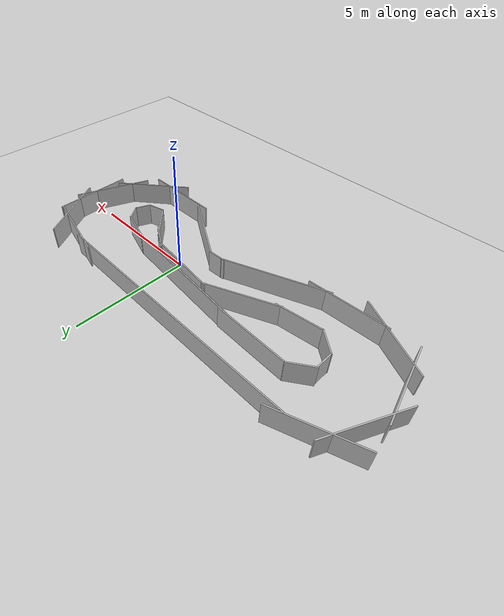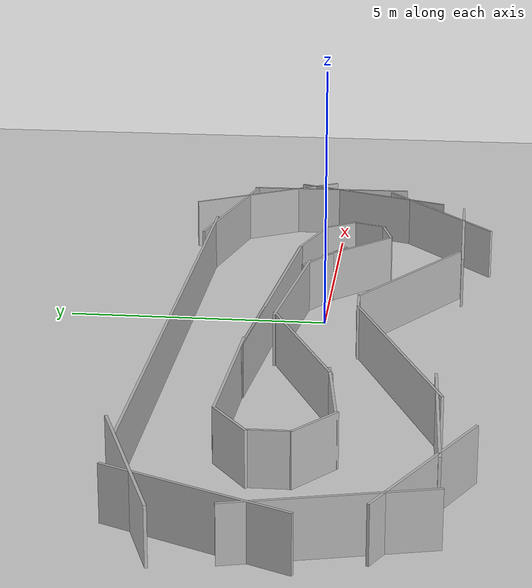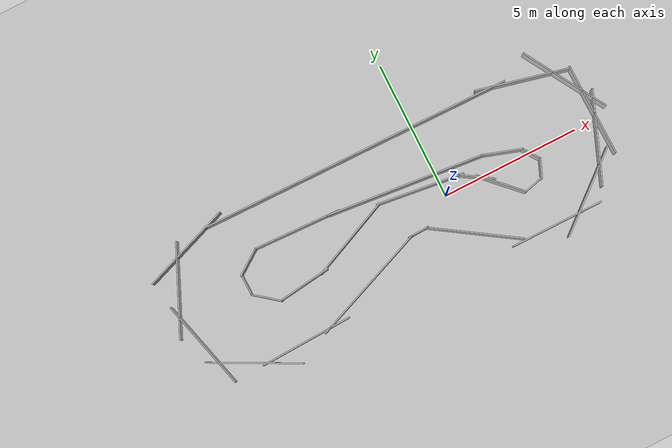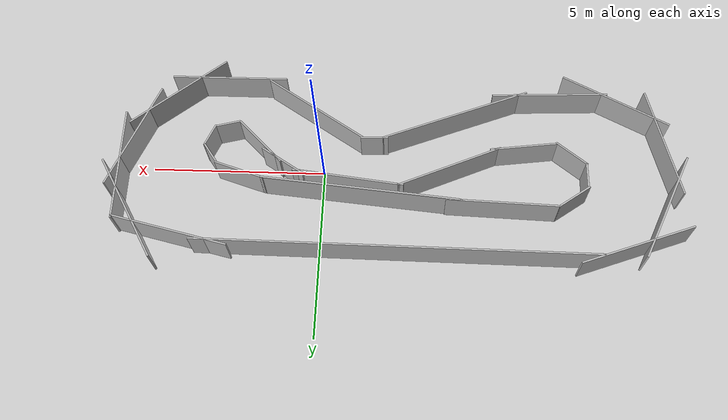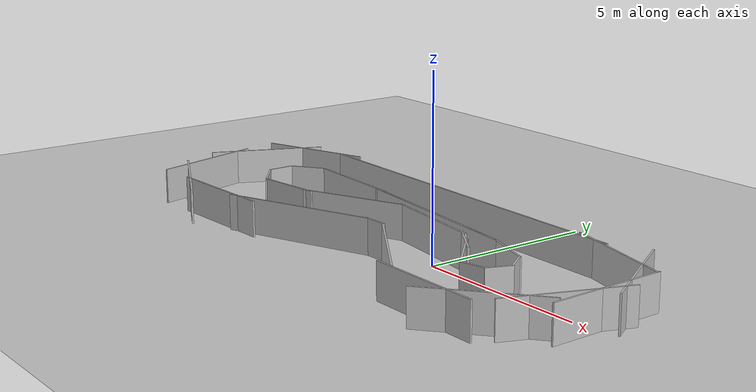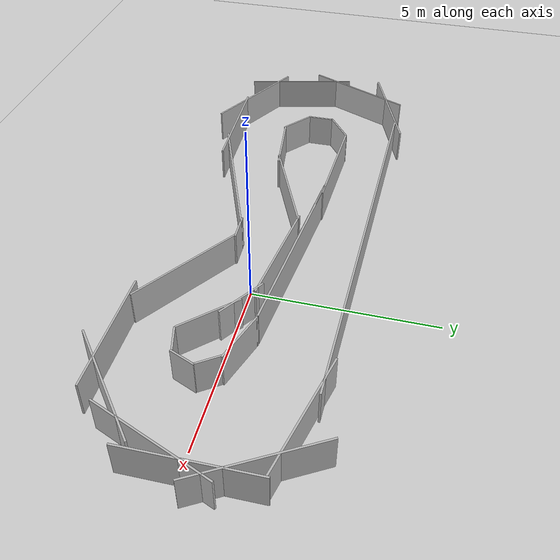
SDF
<sdf version="1.7">
 <world name="default">
  <model name="ground_plane">
   <static>1</static>
   <link name="link">
    <collision name="collision">
     <geometry><plane><normal>0 0 1</normal><size>100 100</size></plane></geometry>
     <surface>
      <contact><collide_bitmask>65535</collide_bitmask></contact>
      <friction><ode><mu>100</mu><mu2>50</mu2></ode></friction>
     </surface>
    </collision>
    <visual name="visual">
     <cast_shadows>0</cast_shadows>
     <geometry><plane><normal>0 0 1</normal><size>100 100</size></plane></geometry>
     <material>
      <script><uri>file://media/materials/scripts/gazebo.material</uri><name>Gazebo/Grey</name></script>
     </material>
    </visual>
   </link>
  </model>
  <light name="sun" type="directional">
   <pose>0 0 10 0 -0 0</pose>
   <diffuse>0.8 0.8 0.8 1</diffuse>
   <specular>0.2 0.2 0.2 1</specular>
   <attenuation>
    <range>1000</range>
    <constant>0.9</constant>
    <linear>0.01</linear>
    <quadratic>0.001</quadratic>
   </attenuation>
   <direction>-0.5 0.1 -0.9</direction>
   <spot><inner_angle>0</inner_angle><outer_angle>0</outer_angle><falloff>0</falloff></spot>
  </light>
  <gravity>0 0 -9.8</gravity>
  <magnetic_field>6e-06 2.3e-05 -4.2e-05</magnetic_field>
  <atmosphere type="adiabatic"/>
  <physics type="ode">
   <max_step_size>0.001</max_step_size>
   <real_time_factor>1</real_time_factor>
   <real_time_update_rate>1000</real_time_update_rate>
  </physics>
  <scene><ambient>0.4 0.4 0.4 1</ambient><background>0.7 0.7 0.7 1</background><shadows>1</shadows></scene>
  <spherical_coordinates>
   <surface_model>EARTH_WGS84</surface_model>
   <latitude_deg>0</latitude_deg>
   <longitude_deg>0</longitude_deg>
   <elevation>0</elevation>
   <heading_deg>0</heading_deg>
  </spherical_coordinates>
  <model name="maze">
   <link name="link">
    <visual name="visual">
     <geometry><box><size>3.37486 0.05 1</size></box></geometry>
     <material><shader type="pixel"/></material>
    </visual>
    <collision name="collision">
     <geometry><box><size>3.37486 0.05 1</size></box></geometry>
     <surface>
      <friction>
       <ode><mu>1</mu><mu2>1</mu2><fdir1>0 0 0</fdir1><slip1>0</slip1><slip2>0</slip2></ode>
       <torsional>
        <coefficient>1</coefficient>
        <patch_radius>0</patch_radius>
        <surface_radius>0</surface_radius>
        <use_patch_radius>1</use_patch_radius>
        <ode><slip>0</slip></ode>
       </torsional>
      </friction>
      <bounce><restitution_coefficient>0</restitution_coefficient><threshold>1e+06</threshold></bounce>
      <contact>
       <collide_without_contact>0</collide_without_contact>
       <collide_without_contact_bitmask>1</collide_without_contact_bitmask>
       <collide_bitmask>1</collide_bitmask>
       <ode>
        <soft_cfm>0</soft_cfm>
        <soft_erp>0.2</soft_erp>
        <kp>1e+13</kp>
        <kd>1</kd>
        <max_vel>0.01</max_vel>
        <min_depth>0</min_depth>
       </ode>
       <bullet>
        <split_impulse>1</split_impulse>
        <split_impulse_penetration_threshold>-0.01</split_impulse_penetration_threshold>
        <soft_cfm>0</soft_cfm>
        <soft_erp>0.2</soft_erp>
        <kp>1e+13</kp>
        <kd>1</kd>
       </bullet>
      </contact>
     </surface>
    </collision>
   </link>
   <link name="link_clone">
    <pose>1.45641 0.512781 0 0 -0 0.695263</pose>
    <visual name="visual">
     <geometry><box><size>3.37486 0.05 1</size></box></geometry>
     <material><shader type="pixel"/></material>
    </visual>
    <collision name="collision">
     <geometry><box><size>3.37486 0.05 1</size></box></geometry>
     <surface>
      <friction>
       <ode><mu>1</mu><mu2>1</mu2><fdir1>0 0 0</fdir1><slip1>0</slip1><slip2>0</slip2></ode>
       <torsional>
        <coefficient>1</coefficient>
        <patch_radius>0</patch_radius>
        <surface_radius>0</surface_radius>
        <use_patch_radius>1</use_patch_radius>
        <ode><slip>0</slip></ode>
       </torsional>
      </friction>
      <bounce><restitution_coefficient>0</restitution_coefficient><threshold>1e+06</threshold></bounce>
      <contact>
       <collide_without_contact>0</collide_without_contact>
       <collide_without_contact_bitmask>1</collide_without_contact_bitmask>
       <collide_bitmask>1</collide_bitmask>
       <ode>
        <soft_cfm>0</soft_cfm>
        <soft_erp>0.2</soft_erp>
        <kp>1e+13</kp>
        <kd>1</kd>
        <max_vel>0.01</max_vel>
        <min_depth>0</min_depth>
       </ode>
       <bullet>
        <split_impulse>1</split_impulse>
        <split_impulse_penetration_threshold>-0.01</split_impulse_penetration_threshold>
        <soft_cfm>0</soft_cfm>
        <soft_erp>0.2</soft_erp>
        <kp>1e+13</kp>
        <kd>1</kd>
       </bullet>
      </contact>
     </surface>
    </collision>
   </link>
   <link name="link_clone_0">
    <pose>2.56956 2.01023 0 0 -0 1.19834</pose>
    <visual name="visual">
     <geometry><box><size>3.37486 0.05 1</size></box></geometry>
     <material><shader type="pixel"/></material>
    </visual>
    <collision name="collision">
     <geometry><box><size>3.37486 0.05 1</size></box></geometry>
     <surface>
      <friction>
       <ode><mu>1</mu><mu2>1</mu2><fdir1>0 0 0</fdir1><slip1>0</slip1><slip2>0</slip2></ode>
       <torsional>
        <coefficient>1</coefficient>
        <patch_radius>0</patch_radius>
        <surface_radius>0</surface_radius>
        <use_patch_radius>1</use_patch_radius>
        <ode><slip>0</slip></ode>
       </torsional>
      </friction>
      <bounce><restitution_coefficient>0</restitution_coefficient><threshold>1e+06</threshold></bounce>
      <contact>
       <collide_without_contact>0</collide_without_contact>
       <collide_without_contact_bitmask>1</collide_without_contact_bitmask>
       <collide_bitmask>1</collide_bitmask>
       <ode>
        <soft_cfm>0</soft_cfm>
        <soft_erp>0.2</soft_erp>
        <kp>1e+13</kp>
        <kd>1</kd>
        <max_vel>0.01</max_vel>
        <min_depth>0</min_depth>
       </ode>
       <bullet>
        <split_impulse>1</split_impulse>
        <split_impulse_penetration_threshold>-0.01</split_impulse_penetration_threshold>
        <soft_cfm>0</soft_cfm>
        <soft_erp>0.2</soft_erp>
        <kp>1e+13</kp>
        <kd>1</kd>
       </bullet>
      </contact>
     </surface>
    </collision>
   </link>
   <link name="link_clone_1">
    <pose>2.85571 2.94015 0 0 0 -1.55236</pose>
    <visual name="visual">
     <geometry><box><size>3.37486 0.05 1</size></box></geometry>
     <material><shader type="pixel"/></material>
    </visual>
    <collision name="collision">
     <geometry><box><size>3.37486 0.05 1</size></box></geometry>
     <surface>
      <friction>
       <ode><mu>1</mu><mu2>1</mu2><fdir1>0 0 0</fdir1><slip1>0</slip1><slip2>0</slip2></ode>
       <torsional>
        <coefficient>1</coefficient>
        <patch_radius>0</patch_radius>
        <surface_radius>0</surface_radius>
        <use_patch_radius>1</use_patch_radius>
        <ode><slip>0</slip></ode>
       </torsional>
      </friction>
      <bounce><restitution_coefficient>0</restitution_coefficient><threshold>1e+06</threshold></bounce>
      <contact>
       <collide_without_contact>0</collide_without_contact>
       <collide_without_contact_bitmask>1</collide_without_contact_bitmask>
       <collide_bitmask>1</collide_bitmask>
       <ode>
        <soft_cfm>0</soft_cfm>
        <soft_erp>0.2</soft_erp>
        <kp>1e+13</kp>
        <kd>1</kd>
        <max_vel>0.01</max_vel>
        <min_depth>0</min_depth>
       </ode>
       <bullet>
        <split_impulse>1</split_impulse>
        <split_impulse_penetration_threshold>-0.01</split_impulse_penetration_threshold>
        <soft_cfm>0</soft_cfm>
        <soft_erp>0.2</soft_erp>
        <kp>1e+13</kp>
        <kd>1</kd>
       </bullet>
      </contact>
     </surface>
    </collision>
   </link>
   <link name="link_clone_2">
    <pose>2.47562 4.28791 0 0 0 -1.03698</pose>
    <visual name="visual">
     <geometry><box><size>3.37486 0.05 1</size></box></geometry>
     <material><shader type="pixel"/></material>
    </visual>
    <collision name="collision">
     <geometry><box><size>3.37486 0.05 1</size></box></geometry>
     <surface>
      <friction>
       <ode><mu>1</mu><mu2>1</mu2><fdir1>0 0 0</fdir1><slip1>0</slip1><slip2>0</slip2></ode>
       <torsional>
        <coefficient>1</coefficient>
        <patch_radius>0</patch_radius>
        <surface_radius>0</surface_radius>
        <use_patch_radius>1</use_patch_radius>
        <ode><slip>0</slip></ode>
       </torsional>
      </friction>
      <bounce><restitution_coefficient>0</restitution_coefficient><threshold>1e+06</threshold></bounce>
      <contact>
       <collide_without_contact>0</collide_without_contact>
       <collide_without_contact_bitmask>1</collide_without_contact_bitmask>
       <collide_bitmask>1</collide_bitmask>
       <ode>
        <soft_cfm>0</soft_cfm>
        <soft_erp>0.2</soft_erp>
        <kp>1e+13</kp>
        <kd>1</kd>
        <max_vel>0.01</max_vel>
        <min_depth>0</min_depth>
       </ode>
       <bullet>
        <split_impulse>1</split_impulse>
        <split_impulse_penetration_threshold>-0.01</split_impulse_penetration_threshold>
        <soft_cfm>0</soft_cfm>
        <soft_erp>0.2</soft_erp>
        <kp>1e+13</kp>
        <kd>1</kd>
       </bullet>
      </contact>
     </surface>
    </collision>
   </link>
   <link name="link_clone_3">
    <pose>1.19528 4.94429 0 0 0 -0.235277</pose>
    <visual name="visual">
     <geometry><box><size>3.37486 0.05 1</size></box></geometry>
     <material><shader type="pixel"/></material>
    </visual>
    <collision name="collision">
     <geometry><box><size>3.37486 0.05 1</size></box></geometry>
     <surface>
      <friction>
       <ode><mu>1</mu><mu2>1</mu2><fdir1>0 0 0</fdir1><slip1>0</slip1><slip2>0</slip2></ode>
       <torsional>
        <coefficient>1</coefficient>
        <patch_radius>0</patch_radius>
        <surface_radius>0</surface_radius>
        <use_patch_radius>1</use_patch_radius>
        <ode><slip>0</slip></ode>
       </torsional>
      </friction>
      <bounce><restitution_coefficient>0</restitution_coefficient><threshold>1e+06</threshold></bounce>
      <contact>
       <collide_without_contact>0</collide_without_contact>
       <collide_without_contact_bitmask>1</collide_without_contact_bitmask>
       <collide_bitmask>1</collide_bitmask>
       <ode>
        <soft_cfm>0</soft_cfm>
        <soft_erp>0.2</soft_erp>
        <kp>1e+13</kp>
        <kd>1</kd>
        <max_vel>0.01</max_vel>
        <min_depth>0</min_depth>
       </ode>
       <bullet>
        <split_impulse>1</split_impulse>
        <split_impulse_penetration_threshold>-0.01</split_impulse_penetration_threshold>
        <soft_cfm>0</soft_cfm>
        <soft_erp>0.2</soft_erp>
        <kp>1e+13</kp>
        <kd>1</kd>
       </bullet>
      </contact>
     </surface>
    </collision>
   </link>
   <link name="link_clone_4">
    <pose>-5.0532 5.25859 0 0 0 -0.013469</pose>
    <inertial>
     <inertia><ixx>0</ixx><ixy>0</ixy><ixz>0</ixz><iyy>0</iyy><iyz>0</iyz><izz>0</izz></inertia>
     <mass>0</mass>
    </inertial>
    <visual name="visual">
     <geometry><box><size>11.3669 0.05 1</size></box></geometry>
     <material><shader type="pixel"/></material>
    </visual>
    <collision name="collision">
     <geometry><box><size>11.3669 0.05 1</size></box></geometry>
     <surface>
      <friction>
       <ode><mu>1</mu><mu2>1</mu2><fdir1>0 0 0</fdir1><slip1>0</slip1><slip2>0</slip2></ode>
       <torsional>
        <coefficient>1</coefficient>
        <patch_radius>0</patch_radius>
        <surface_radius>0</surface_radius>
        <use_patch_radius>1</use_patch_radius>
        <ode><slip>0</slip></ode>
       </torsional>
      </friction>
      <bounce><restitution_coefficient>0</restitution_coefficient><threshold>1e+06</threshold></bounce>
      <contact>
       <collide_without_contact>0</collide_without_contact>
       <collide_without_contact_bitmask>1</collide_without_contact_bitmask>
       <collide_bitmask>1</collide_bitmask>
       <ode>
        <soft_cfm>0</soft_cfm>
        <soft_erp>0.2</soft_erp>
        <kp>1e+13</kp>
        <kd>1</kd>
        <max_vel>0.01</max_vel>
        <min_depth>0</min_depth>
       </ode>
       <bullet>
        <split_impulse>1</split_impulse>
        <split_impulse_penetration_threshold>-0.01</split_impulse_penetration_threshold>
        <soft_cfm>0</soft_cfm>
        <soft_erp>0.2</soft_erp>
        <kp>1e+13</kp>
        <kd>1</kd>
       </bullet>
      </contact>
     </surface>
    </collision>
   </link>
   <link name="link_clone_4_clone">
    <pose>-4.06802 3.54439 0 0 0 -0.097717</pose>
    <inertial>
     <inertia><ixx>0</ixx><ixy>0</ixy><ixz>0</ixz><iyy>0</iyy><iyz>0</iyz><izz>0</izz></inertia>
     <mass>0</mass>
    </inertial>
    <visual name="visual">
     <geometry><box><size>5.62454 0.05 1</size></box></geometry>
     <material><shader type="pixel"/></material>
    </visual>
    <collision name="collision">
     <geometry><box><size>5.62454 0.05 1</size></box></geometry>
     <surface>
      <friction>
       <ode><mu>1</mu><mu2>1</mu2><fdir1>0 0 0</fdir1><slip1>0</slip1><slip2>0</slip2></ode>
       <torsional>
        <coefficient>1</coefficient>
        <patch_radius>0</patch_radius>
        <surface_radius>0</surface_radius>
        <use_patch_radius>1</use_patch_radius>
        <ode><slip>0</slip></ode>
       </torsional>
      </friction>
      <bounce><restitution_coefficient>0</restitution_coefficient><threshold>1e+06</threshold></bounce>
      <contact>
       <collide_without_contact>0</collide_without_contact>
       <collide_without_contact_bitmask>1</collide_without_contact_bitmask>
       <collide_bitmask>1</collide_bitmask>
       <ode>
        <soft_cfm>0</soft_cfm>
        <soft_erp>0.2</soft_erp>
        <kp>1e+13</kp>
        <kd>1</kd>
        <max_vel>0.01</max_vel>
        <min_depth>0</min_depth>
       </ode>
       <bullet>
        <split_impulse>1</split_impulse>
        <split_impulse_penetration_threshold>-0.01</split_impulse_penetration_threshold>
        <soft_cfm>0</soft_cfm>
        <soft_erp>0.2</soft_erp>
        <kp>1e+13</kp>
        <kd>1</kd>
       </bullet>
      </contact>
     </surface>
    </collision>
   </link>
   <link name="link_clone_4_clone_clone">
    <pose>-3.97504 3.52341 0 0 0 -0.097717</pose>
    <inertial>
     <inertia><ixx>0</ixx><ixy>0</ixy><ixz>0</ixz><iyy>0</iyy><iyz>0</iyz><izz>0</izz></inertia>
     <mass>0</mass>
    </inertial>
    <visual name="visual">
     <geometry><box><size>5.62454 0.05 1</size></box></geometry>
     <material><shader type="pixel"/></material>
    </visual>
    <collision name="collision">
     <geometry><box><size>5.62454 0.05 1</size></box></geometry>
     <surface>
      <friction>
       <ode><mu>1</mu><mu2>1</mu2><fdir1>0 0 0</fdir1><slip1>0</slip1><slip2>0</slip2></ode>
       <torsional>
        <coefficient>1</coefficient>
        <patch_radius>0</patch_radius>
        <surface_radius>0</surface_radius>
        <use_patch_radius>1</use_patch_radius>
        <ode><slip>0</slip></ode>
       </torsional>
      </friction>
      <bounce><restitution_coefficient>0</restitution_coefficient><threshold>1e+06</threshold></bounce>
      <contact>
       <collide_without_contact>0</collide_without_contact>
       <collide_without_contact_bitmask>1</collide_without_contact_bitmask>
       <collide_bitmask>1</collide_bitmask>
       <ode>
        <soft_cfm>0</soft_cfm>
        <soft_erp>0.2</soft_erp>
        <kp>1e+13</kp>
        <kd>1</kd>
        <max_vel>0.01</max_vel>
        <min_depth>0</min_depth>
       </ode>
       <bullet>
        <split_impulse>1</split_impulse>
        <split_impulse_penetration_threshold>-0.01</split_impulse_penetration_threshold>
        <soft_cfm>0</soft_cfm>
        <soft_erp>0.2</soft_erp>
        <kp>1e+13</kp>
        <kd>1</kd>
       </bullet>
      </contact>
     </surface>
    </collision>
   </link>
   <link name="link_clone_4_clone_clone_0">
    <pose>-7.98841 3.86315 0 0 0 -0.03851</pose>
    <inertial>
     <inertia><ixx>0</ixx><ixy>0</ixy><ixz>0</ixz><iyy>0</iyy><iyz>0</iyz><izz>0</izz></inertia>
     <mass>0</mass>
    </inertial>
    <visual name="visual">
     <geometry><box><size>3.17951 0.05 1</size></box></geometry>
     <material><shader type="pixel"/></material>
    </visual>
    <collision name="collision">
     <geometry><box><size>3.17951 0.05 1</size></box></geometry>
     <surface>
      <friction>
       <ode><mu>1</mu><mu2>1</mu2><fdir1>0 0 0</fdir1><slip1>0</slip1><slip2>0</slip2></ode>
       <torsional>
        <coefficient>1</coefficient>
        <patch_radius>0</patch_radius>
        <surface_radius>0</surface_radius>
        <use_patch_radius>1</use_patch_radius>
        <ode><slip>0</slip></ode>
       </torsional>
      </friction>
      <bounce><restitution_coefficient>0</restitution_coefficient><threshold>1e+06</threshold></bounce>
      <contact>
       <collide_without_contact>0</collide_without_contact>
       <collide_without_contact_bitmask>1</collide_without_contact_bitmask>
       <collide_bitmask>1</collide_bitmask>
       <ode>
        <soft_cfm>0</soft_cfm>
        <soft_erp>0.2</soft_erp>
        <kp>1e+13</kp>
        <kd>1</kd>
        <max_vel>0.01</max_vel>
        <min_depth>0</min_depth>
       </ode>
       <bullet>
        <split_impulse>1</split_impulse>
        <split_impulse_penetration_threshold>-0.01</split_impulse_penetration_threshold>
        <soft_cfm>0</soft_cfm>
        <soft_erp>0.2</soft_erp>
        <kp>1e+13</kp>
        <kd>1</kd>
       </bullet>
      </contact>
     </surface>
    </collision>
   </link>
   <link name="link_clone_4_clone_clone_0_clone">
    <pose>-8.63848 2.07106 0 0 -0 0.127434</pose>
    <inertial>
     <inertia><ixx>0</ixx><ixy>0</ixy><ixz>0</ixz><iyy>0</iyy><iyz>0</iyz><izz>0</izz></inertia>
     <mass>0</mass>
    </inertial>
    <visual name="visual">
     <geometry><box><size>1.95424 0.05 1</size></box></geometry>
     <material><shader type="pixel"/></material>
    </visual>
    <collision name="collision">
     <geometry><box><size>1.95424 0.05 1</size></box></geometry>
     <surface>
      <friction>
       <ode><mu>1</mu><mu2>1</mu2><fdir1>0 0 0</fdir1><slip1>0</slip1><slip2>0</slip2></ode>
       <torsional>
        <coefficient>1</coefficient>
        <patch_radius>0</patch_radius>
        <surface_radius>0</surface_radius>
        <use_patch_radius>1</use_patch_radius>
        <ode><slip>0</slip></ode>
       </torsional>
      </friction>
      <bounce><restitution_coefficient>0</restitution_coefficient><threshold>1e+06</threshold></bounce>
      <contact>
       <collide_without_contact>0</collide_without_contact>
       <collide_without_contact_bitmask>1</collide_without_contact_bitmask>
       <collide_bitmask>1</collide_bitmask>
       <ode>
        <soft_cfm>0</soft_cfm>
        <soft_erp>0.2</soft_erp>
        <kp>1e+13</kp>
        <kd>1</kd>
        <max_vel>0.01</max_vel>
        <min_depth>0</min_depth>
       </ode>
       <bullet>
        <split_impulse>1</split_impulse>
        <split_impulse_penetration_threshold>-0.01</split_impulse_penetration_threshold>
        <soft_cfm>0</soft_cfm>
        <soft_erp>0.2</soft_erp>
        <kp>1e+13</kp>
        <kd>1</kd>
       </bullet>
      </contact>
     </surface>
    </collision>
   </link>
   <link name="link_clone_4_clone_clone_0_clone_0">
    <pose>-6.512 2.76438 0 0 -0 0.410248</pose>
    <inertial>
     <inertia><ixx>0</ixx><ixy>0</ixy><ixz>0</ixz><iyy>0</iyy><iyz>0</iyz><izz>0</izz></inertia>
     <mass>0</mass>
    </inertial>
    <visual name="visual">
     <geometry><box><size>3.17951 0.05 1</size></box></geometry>
     <material><shader type="pixel"/></material>
    </visual>
    <collision name="collision">
     <geometry><box><size>3.17951 0.05 1</size></box></geometry>
     <surface>
      <friction>
       <ode><mu>1</mu><mu2>1</mu2><fdir1>0 0 0</fdir1><slip1>0</slip1><slip2>0</slip2></ode>
       <torsional>
        <coefficient>1</coefficient>
        <patch_radius>0</patch_radius>
        <surface_radius>0</surface_radius>
        <use_patch_radius>1</use_patch_radius>
        <ode><slip>0</slip></ode>
       </torsional>
      </friction>
      <bounce><restitution_coefficient>0</restitution_coefficient><threshold>1e+06</threshold></bounce>
      <contact>
       <collide_without_contact>0</collide_without_contact>
       <collide_without_contact_bitmask>1</collide_without_contact_bitmask>
       <collide_bitmask>1</collide_bitmask>
       <ode>
        <soft_cfm>0</soft_cfm>
        <soft_erp>0.2</soft_erp>
        <kp>1e+13</kp>
        <kd>1</kd>
        <max_vel>0.01</max_vel>
        <min_depth>0</min_depth>
       </ode>
       <bullet>
        <split_impulse>1</split_impulse>
        <split_impulse_penetration_threshold>-0.01</split_impulse_penetration_threshold>
        <soft_cfm>0</soft_cfm>
        <soft_erp>0.2</soft_erp>
        <kp>1e+13</kp>
        <kd>1</kd>
       </bullet>
      </contact>
     </surface>
    </collision>
   </link>
   <link name="link_clone_4_clone_clone_0_clone_1">
    <pose>-3.63948 3.19342 0 0 0 -0.125135</pose>
    <inertial>
     <inertia><ixx>0</ixx><ixy>0</ixy><ixz>0</ixz><iyy>0</iyy><iyz>0</iyz><izz>0</izz></inertia>
     <mass>0</mass>
    </inertial>
    <visual name="visual">
     <geometry><box><size>3.17951 0.05 1</size></box></geometry>
     <material><shader type="pixel"/></material>
    </visual>
    <collision name="collision">
     <geometry><box><size>3.17951 0.05 1</size></box></geometry>
     <surface>
      <friction>
       <ode><mu>1</mu><mu2>1</mu2><fdir1>0 0 0</fdir1><slip1>0</slip1><slip2>0</slip2></ode>
       <torsional>
        <coefficient>1</coefficient>
        <patch_radius>0</patch_radius>
        <surface_radius>0</surface_radius>
        <use_patch_radius>1</use_patch_radius>
        <ode><slip>0</slip></ode>
       </torsional>
      </friction>
      <bounce><restitution_coefficient>0</restitution_coefficient><threshold>1e+06</threshold></bounce>
      <contact>
       <collide_without_contact>0</collide_without_contact>
       <collide_without_contact_bitmask>1</collide_without_contact_bitmask>
       <collide_bitmask>1</collide_bitmask>
       <ode>
        <soft_cfm>0</soft_cfm>
        <soft_erp>0.2</soft_erp>
        <kp>1e+13</kp>
        <kd>1</kd>
        <max_vel>0.01</max_vel>
        <min_depth>0</min_depth>
       </ode>
       <bullet>
        <split_impulse>1</split_impulse>
        <split_impulse_penetration_threshold>-0.01</split_impulse_penetration_threshold>
        <soft_cfm>0</soft_cfm>
        <soft_erp>0.2</soft_erp>
        <kp>1e+13</kp>
        <kd>1</kd>
       </bullet>
      </contact>
     </surface>
    </collision>
   </link>
   <link name="link_clone_4_clone_clone_0_clone_2">
    <pose>-1.77115 2.7225 0 0 0 -0.573609</pose>
    <inertial>
     <inertia><ixx>0</ixx><ixy>0</ixy><ixz>0</ixz><iyy>0</iyy><iyz>0</iyz><izz>0</izz></inertia>
     <mass>0</mass>
    </inertial>
    <visual name="visual">
     <geometry><box><size>1.44307 0.05 1</size></box></geometry>
     <material><shader type="pixel"/></material>
    </visual>
    <collision name="collision">
     <geometry><box><size>1.44307 0.05 1</size></box></geometry>
     <surface>
      <friction>
       <ode><mu>1</mu><mu2>1</mu2><fdir1>0 0 0</fdir1><slip1>0</slip1><slip2>0</slip2></ode>
       <torsional>
        <coefficient>1</coefficient>
        <patch_radius>0</patch_radius>
        <surface_radius>0</surface_radius>
        <use_patch_radius>1</use_patch_radius>
        <ode><slip>0</slip></ode>
       </torsional>
      </friction>
      <bounce><restitution_coefficient>0</restitution_coefficient><threshold>1e+06</threshold></bounce>
      <contact>
       <collide_without_contact>0</collide_without_contact>
       <collide_without_contact_bitmask>1</collide_without_contact_bitmask>
       <collide_bitmask>1</collide_bitmask>
       <ode>
        <soft_cfm>0</soft_cfm>
        <soft_erp>0.2</soft_erp>
        <kp>1e+13</kp>
        <kd>1</kd>
        <max_vel>0.01</max_vel>
        <min_depth>0</min_depth>
       </ode>
       <bullet>
        <split_impulse>1</split_impulse>
        <split_impulse_penetration_threshold>-0.01</split_impulse_penetration_threshold>
        <soft_cfm>0</soft_cfm>
        <soft_erp>0.2</soft_erp>
        <kp>1e+13</kp>
        <kd>1</kd>
       </bullet>
      </contact>
     </surface>
    </collision>
   </link>
   <link name="link_clone_5">
    <pose>-11.6623 5.01224 0 0 -0 0.350108</pose>
    <visual name="visual">
     <geometry><box><size>3.37486 0.05 1</size></box></geometry>
     <material><shader type="pixel"/></material>
    </visual>
    <collision name="collision">
     <geometry><box><size>3.37486 0.05 1</size></box></geometry>
     <surface>
      <friction>
       <ode><mu>1</mu><mu2>1</mu2><fdir1>0 0 0</fdir1><slip1>0</slip1><slip2>0</slip2></ode>
       <torsional>
        <coefficient>1</coefficient>
        <patch_radius>0</patch_radius>
        <surface_radius>0</surface_radius>
        <use_patch_radius>1</use_patch_radius>
        <ode><slip>0</slip></ode>
       </torsional>
      </friction>
      <bounce><restitution_coefficient>0</restitution_coefficient><threshold>1e+06</threshold></bounce>
      <contact>
       <collide_without_contact>0</collide_without_contact>
       <collide_without_contact_bitmask>1</collide_without_contact_bitmask>
       <collide_bitmask>1</collide_bitmask>
       <ode>
        <soft_cfm>0</soft_cfm>
        <soft_erp>0.2</soft_erp>
        <kp>1e+13</kp>
        <kd>1</kd>
        <max_vel>0.01</max_vel>
        <min_depth>0</min_depth>
       </ode>
       <bullet>
        <split_impulse>1</split_impulse>
        <split_impulse_penetration_threshold>-0.01</split_impulse_penetration_threshold>
        <soft_cfm>0</soft_cfm>
        <soft_erp>0.2</soft_erp>
        <kp>1e+13</kp>
        <kd>1</kd>
       </bullet>
      </contact>
     </surface>
    </collision>
   </link>
   <link name="link_clone_5_clone">
    <pose>-12.5612 3.83947 0 0 -0 1.14512</pose>
    <visual name="visual">
     <geometry><box><size>3.37486 0.05 1</size></box></geometry>
     <material><shader type="pixel"/></material>
    </visual>
    <collision name="collision">
     <geometry><box><size>3.37486 0.05 1</size></box></geometry>
     <surface>
      <friction>
       <ode><mu>1</mu><mu2>1</mu2><fdir1>0 0 0</fdir1><slip1>0</slip1><slip2>0</slip2></ode>
       <torsional>
        <coefficient>1</coefficient>
        <patch_radius>0</patch_radius>
        <surface_radius>0</surface_radius>
        <use_patch_radius>1</use_patch_radius>
        <ode><slip>0</slip></ode>
       </torsional>
      </friction>
      <bounce><restitution_coefficient>0</restitution_coefficient><threshold>1e+06</threshold></bounce>
      <contact>
       <collide_without_contact>0</collide_without_contact>
       <collide_without_contact_bitmask>1</collide_without_contact_bitmask>
       <collide_bitmask>1</collide_bitmask>
       <ode>
        <soft_cfm>0</soft_cfm>
        <soft_erp>0.2</soft_erp>
        <kp>1e+13</kp>
        <kd>1</kd>
        <max_vel>0.01</max_vel>
        <min_depth>0</min_depth>
       </ode>
       <bullet>
        <split_impulse>1</split_impulse>
        <split_impulse_penetration_threshold>-0.01</split_impulse_penetration_threshold>
        <soft_cfm>0</soft_cfm>
        <soft_erp>0.2</soft_erp>
        <kp>1e+13</kp>
        <kd>1</kd>
       </bullet>
      </contact>
     </surface>
    </collision>
   </link>
   <link name="link_clone_5_clone_0">
    <pose>-12.6394 1.81089 0 0 0 -1.32126</pose>
    <visual name="visual">
     <geometry><box><size>3.37486 0.05 1</size></box></geometry>
     <material><shader type="pixel"/></material>
    </visual>
    <collision name="collision">
     <geometry><box><size>3.37486 0.05 1</size></box></geometry>
     <surface>
      <friction>
       <ode><mu>1</mu><mu2>1</mu2><fdir1>0 0 0</fdir1><slip1>0</slip1><slip2>0</slip2></ode>
       <torsional>
        <coefficient>1</coefficient>
        <patch_radius>0</patch_radius>
        <surface_radius>0</surface_radius>
        <use_patch_radius>1</use_patch_radius>
        <ode><slip>0</slip></ode>
       </torsional>
      </friction>
      <bounce><restitution_coefficient>0</restitution_coefficient><threshold>1e+06</threshold></bounce>
      <contact>
       <collide_without_contact>0</collide_without_contact>
       <collide_without_contact_bitmask>1</collide_without_contact_bitmask>
       <collide_bitmask>1</collide_bitmask>
       <ode>
        <soft_cfm>0</soft_cfm>
        <soft_erp>0.2</soft_erp>
        <kp>1e+13</kp>
        <kd>1</kd>
        <max_vel>0.01</max_vel>
        <min_depth>0</min_depth>
       </ode>
       <bullet>
        <split_impulse>1</split_impulse>
        <split_impulse_penetration_threshold>-0.01</split_impulse_penetration_threshold>
        <soft_cfm>0</soft_cfm>
        <soft_erp>0.2</soft_erp>
        <kp>1e+13</kp>
        <kd>1</kd>
       </bullet>
      </contact>
     </surface>
    </collision>
   </link>
   <link name="link_clone_5_clone_0_clone">
    <pose>-10.3919 2.94612 0 0 0 -1.5604</pose>
    <inertial>
     <inertia><ixx>0</ixx><ixy>0</ixy><ixz>0</ixz><iyy>0</iyy><iyz>0</iyz><izz>0</izz></inertia>
     <mass>0</mass>
    </inertial>
    <visual name="visual">
     <geometry><box><size>0.749398 0.05 1</size></box></geometry>
     <material><shader type="pixel"/></material>
    </visual>
    <collision name="collision">
     <geometry><box><size>0.749398 0.05 1</size></box></geometry>
     <surface>
      <friction>
       <ode><mu>1</mu><mu2>1</mu2><fdir1>0 0 0</fdir1><slip1>0</slip1><slip2>0</slip2></ode>
       <torsional>
        <coefficient>1</coefficient>
        <patch_radius>0</patch_radius>
        <surface_radius>0</surface_radius>
        <use_patch_radius>1</use_patch_radius>
        <ode><slip>0</slip></ode>
       </torsional>
      </friction>
      <bounce><restitution_coefficient>0</restitution_coefficient><threshold>1e+06</threshold></bounce>
      <contact>
       <collide_without_contact>0</collide_without_contact>
       <collide_without_contact_bitmask>1</collide_without_contact_bitmask>
       <collide_bitmask>1</collide_bitmask>
       <ode>
        <soft_cfm>0</soft_cfm>
        <soft_erp>0.2</soft_erp>
        <kp>1e+13</kp>
        <kd>1</kd>
        <max_vel>0.01</max_vel>
        <min_depth>0</min_depth>
       </ode>
       <bullet>
        <split_impulse>1</split_impulse>
        <split_impulse_penetration_threshold>-0.01</split_impulse_penetration_threshold>
        <soft_cfm>0</soft_cfm>
        <soft_erp>0.2</soft_erp>
        <kp>1e+13</kp>
        <kd>1</kd>
       </bullet>
      </contact>
     </surface>
    </collision>
   </link>
   <link name="link_clone_5_clone_1">
    <pose>-11.3607 0.468544 0 0 0 -0.478557</pose>
    <visual name="visual">
     <geometry><box><size>3.37486 0.05 1</size></box></geometry>
     <material><shader type="pixel"/></material>
    </visual>
    <collision name="collision">
     <geometry><box><size>3.37486 0.05 1</size></box></geometry>
     <surface>
      <friction>
       <ode><mu>1</mu><mu2>1</mu2><fdir1>0 0 0</fdir1><slip1>0</slip1><slip2>0</slip2></ode>
       <torsional>
        <coefficient>1</coefficient>
        <patch_radius>0</patch_radius>
        <surface_radius>0</surface_radius>
        <use_patch_radius>1</use_patch_radius>
        <ode><slip>0</slip></ode>
       </torsional>
      </friction>
      <bounce><restitution_coefficient>0</restitution_coefficient><threshold>1e+06</threshold></bounce>
      <contact>
       <collide_without_contact>0</collide_without_contact>
       <collide_without_contact_bitmask>1</collide_without_contact_bitmask>
       <collide_bitmask>1</collide_bitmask>
       <ode>
        <soft_cfm>0</soft_cfm>
        <soft_erp>0.2</soft_erp>
        <kp>1e+13</kp>
        <kd>1</kd>
        <max_vel>0.01</max_vel>
        <min_depth>0</min_depth>
       </ode>
       <bullet>
        <split_impulse>1</split_impulse>
        <split_impulse_penetration_threshold>-0.01</split_impulse_penetration_threshold>
        <soft_cfm>0</soft_cfm>
        <soft_erp>0.2</soft_erp>
        <kp>1e+13</kp>
        <kd>1</kd>
       </bullet>
      </contact>
     </surface>
    </collision>
   </link>
   <link name="link_clone_5_clone_1_clone">
    <pose>-9.445 0.319798 0 0 -0 0.03912</pose>
    <visual name="visual">
     <geometry><box><size>3.37486 0.05 1</size></box></geometry>
     <material><shader type="pixel"/></material>
    </visual>
    <collision name="collision">
     <geometry><box><size>3.37486 0.05 1</size></box></geometry>
     <surface>
      <friction>
       <ode><mu>1</mu><mu2>1</mu2><fdir1>0 0 0</fdir1><slip1>0</slip1><slip2>0</slip2></ode>
       <torsional>
        <coefficient>1</coefficient>
        <patch_radius>0</patch_radius>
        <surface_radius>0</surface_radius>
        <use_patch_radius>1</use_patch_radius>
        <ode><slip>0</slip></ode>
       </torsional>
      </friction>
      <bounce><restitution_coefficient>0</restitution_coefficient><threshold>1e+06</threshold></bounce>
      <contact>
       <collide_without_contact>0</collide_without_contact>
       <collide_without_contact_bitmask>1</collide_without_contact_bitmask>
       <collide_bitmask>1</collide_bitmask>
       <ode>
        <soft_cfm>0</soft_cfm>
        <soft_erp>0.2</soft_erp>
        <kp>1e+13</kp>
        <kd>1</kd>
        <max_vel>0.01</max_vel>
        <min_depth>0</min_depth>
       </ode>
       <bullet>
        <split_impulse>1</split_impulse>
        <split_impulse_penetration_threshold>-0.01</split_impulse_penetration_threshold>
        <soft_cfm>0</soft_cfm>
        <soft_erp>0.2</soft_erp>
        <kp>1e+13</kp>
        <kd>1</kd>
       </bullet>
      </contact>
     </surface>
    </collision>
   </link>
   <link name="link_clone_5_clone_1_clone_clone">
    <pose>-6.67387 1.08106 0 0 -0 0.373855</pose>
    <inertial>
     <inertia><ixx>0</ixx><ixy>0</ixy><ixz>0</ixz><iyy>0</iyy><iyz>0</iyz><izz>0</izz></inertia>
     <mass>0</mass>
    </inertial>
    <visual name="visual">
     <geometry><box><size>4.49123 0.05 1</size></box></geometry>
     <material><shader type="pixel"/></material>
    </visual>
    <collision name="collision">
     <geometry><box><size>4.49123 0.05 1</size></box></geometry>
     <surface>
      <friction>
       <ode><mu>1</mu><mu2>1</mu2><fdir1>0 0 0</fdir1><slip1>0</slip1><slip2>0</slip2></ode>
       <torsional>
        <coefficient>1</coefficient>
        <patch_radius>0</patch_radius>
        <surface_radius>0</surface_radius>
        <use_patch_radius>1</use_patch_radius>
        <ode><slip>0</slip></ode>
       </torsional>
      </friction>
      <bounce><restitution_coefficient>0</restitution_coefficient><threshold>1e+06</threshold></bounce>
      <contact>
       <collide_without_contact>0</collide_without_contact>
       <collide_without_contact_bitmask>1</collide_without_contact_bitmask>
       <collide_bitmask>1</collide_bitmask>
       <ode>
        <soft_cfm>0</soft_cfm>
        <soft_erp>0.2</soft_erp>
        <kp>1e+13</kp>
        <kd>1</kd>
        <max_vel>0.01</max_vel>
        <min_depth>0</min_depth>
       </ode>
       <bullet>
        <split_impulse>1</split_impulse>
        <split_impulse_penetration_threshold>-0.01</split_impulse_penetration_threshold>
        <soft_cfm>0</soft_cfm>
        <soft_erp>0.2</soft_erp>
        <kp>1e+13</kp>
        <kd>1</kd>
       </bullet>
      </contact>
     </surface>
    </collision>
   </link>
   <link name="link_clone_5_clone_1_clone_clone_0">
    <pose>-4.34893 1.90037 0 0 -0 0.03912</pose>
    <inertial>
     <inertia><ixx>0</ixx><ixy>0</ixy><ixz>0</ixz><iyy>0</iyy><iyz>0</iyz><izz>0</izz></inertia>
     <mass>0</mass>
    </inertial>
    <visual name="visual">
     <geometry><box><size>0.790942 0.05 1</size></box></geometry>
     <material><shader type="pixel"/></material>
    </visual>
    <collision name="collision">
     <geometry><box><size>0.790942 0.05 1</size></box></geometry>
     <surface>
      <friction>
       <ode><mu>1</mu><mu2>1</mu2><fdir1>0 0 0</fdir1><slip1>0</slip1><slip2>0</slip2></ode>
       <torsional>
        <coefficient>1</coefficient>
        <patch_radius>0</patch_radius>
        <surface_radius>0</surface_radius>
        <use_patch_radius>1</use_patch_radius>
        <ode><slip>0</slip></ode>
       </torsional>
      </friction>
      <bounce><restitution_coefficient>0</restitution_coefficient><threshold>1e+06</threshold></bounce>
      <contact>
       <collide_without_contact>0</collide_without_contact>
       <collide_without_contact_bitmask>1</collide_without_contact_bitmask>
       <collide_bitmask>1</collide_bitmask>
       <ode>
        <soft_cfm>0</soft_cfm>
        <soft_erp>0.2</soft_erp>
        <kp>1e+13</kp>
        <kd>1</kd>
        <max_vel>0.01</max_vel>
        <min_depth>0</min_depth>
       </ode>
       <bullet>
        <split_impulse>1</split_impulse>
        <split_impulse_penetration_threshold>-0.01</split_impulse_penetration_threshold>
        <soft_cfm>0</soft_cfm>
        <soft_erp>0.2</soft_erp>
        <kp>1e+13</kp>
        <kd>1</kd>
       </bullet>
      </contact>
     </surface>
    </collision>
   </link>
   <link name="link_clone_5_clone_1_clone_clone_1">
    <pose>-2.61493 0.981321 0 0 0 -0.582392</pose>
    <visual name="visual">
     <geometry><box><size>3.37486 0.05 1</size></box></geometry>
     <material><shader type="pixel"/></material>
    </visual>
    <collision name="collision">
     <geometry><box><size>3.37486 0.05 1</size></box></geometry>
     <surface>
      <friction>
       <ode><mu>1</mu><mu2>1</mu2><fdir1>0 0 0</fdir1><slip1>0</slip1><slip2>0</slip2></ode>
       <torsional>
        <coefficient>1</coefficient>
        <patch_radius>0</patch_radius>
        <surface_radius>0</surface_radius>
        <use_patch_radius>1</use_patch_radius>
        <ode><slip>0</slip></ode>
       </torsional>
      </friction>
      <bounce><restitution_coefficient>0</restitution_coefficient><threshold>1e+06</threshold></bounce>
      <contact>
       <collide_without_contact>0</collide_without_contact>
       <collide_without_contact_bitmask>1</collide_without_contact_bitmask>
       <collide_bitmask>1</collide_bitmask>
       <ode>
        <soft_cfm>0</soft_cfm>
        <soft_erp>0.2</soft_erp>
        <kp>1e+13</kp>
        <kd>1</kd>
        <max_vel>0.01</max_vel>
        <min_depth>0</min_depth>
       </ode>
       <bullet>
        <split_impulse>1</split_impulse>
        <split_impulse_penetration_threshold>-0.01</split_impulse_penetration_threshold>
        <soft_cfm>0</soft_cfm>
        <soft_erp>0.2</soft_erp>
        <kp>1e+13</kp>
        <kd>1</kd>
       </bullet>
      </contact>
     </surface>
    </collision>
   </link>
   <link name="link_clone_5_clone_2">
    <pose>-9.99231 3.62007 0 0 -0 0.617489</pose>
    <inertial>
     <inertia><ixx>0</ixx><ixy>0</ixy><ixz>0</ixz><iyy>0</iyy><iyz>0</iyz><izz>0</izz></inertia>
     <mass>0</mass>
    </inertial>
    <visual name="visual">
     <geometry><box><size>1.10215 0.05 1</size></box></geometry>
     <material><shader type="pixel"/></material>
    </visual>
    <collision name="collision">
     <geometry><box><size>1.10215 0.05 1</size></box></geometry>
     <surface>
      <friction>
       <ode><mu>1</mu><mu2>1</mu2><fdir1>0 0 0</fdir1><slip1>0</slip1><slip2>0</slip2></ode>
       <torsional>
        <coefficient>1</coefficient>
        <patch_radius>0</patch_radius>
        <surface_radius>0</surface_radius>
        <use_patch_radius>1</use_patch_radius>
        <ode><slip>0</slip></ode>
       </torsional>
      </friction>
      <bounce><restitution_coefficient>0</restitution_coefficient><threshold>1e+06</threshold></bounce>
      <contact>
       <collide_without_contact>0</collide_without_contact>
       <collide_without_contact_bitmask>1</collide_without_contact_bitmask>
       <collide_bitmask>1</collide_bitmask>
       <ode>
        <soft_cfm>0</soft_cfm>
        <soft_erp>0.2</soft_erp>
        <kp>1e+13</kp>
        <kd>1</kd>
        <max_vel>0.01</max_vel>
        <min_depth>0</min_depth>
       </ode>
       <bullet>
        <split_impulse>1</split_impulse>
        <split_impulse_penetration_threshold>-0.01</split_impulse_penetration_threshold>
        <soft_cfm>0</soft_cfm>
        <soft_erp>0.2</soft_erp>
        <kp>1e+13</kp>
        <kd>1</kd>
       </bullet>
      </contact>
     </surface>
    </collision>
   </link>
   <link name="link_clone_5_clone_2_clone">
    <pose>-9.98466 2.25966 0 0 0 -0.669917</pose>
    <inertial>
     <inertia><ixx>0</ixx><ixy>0</ixy><ixz>0</ixz><iyy>0</iyy><iyz>0</iyz><izz>0</izz></inertia>
     <mass>0</mass>
    </inertial>
    <visual name="visual">
     <geometry><box><size>1.10215 0.05 1</size></box></geometry>
     <material><shader type="pixel"/></material>
    </visual>
    <collision name="collision">
     <geometry><box><size>1.10215 0.05 1</size></box></geometry>
     <surface>
      <friction>
       <ode><mu>1</mu><mu2>1</mu2><fdir1>0 0 0</fdir1><slip1>0</slip1><slip2>0</slip2></ode>
       <torsional>
        <coefficient>1</coefficient>
        <patch_radius>0</patch_radius>
        <surface_radius>0</surface_radius>
        <use_patch_radius>1</use_patch_radius>
        <ode><slip>0</slip></ode>
       </torsional>
      </friction>
      <bounce><restitution_coefficient>0</restitution_coefficient><threshold>1e+06</threshold></bounce>
      <contact>
       <collide_without_contact>0</collide_without_contact>
       <collide_without_contact_bitmask>1</collide_without_contact_bitmask>
       <collide_bitmask>1</collide_bitmask>
       <ode>
        <soft_cfm>0</soft_cfm>
        <soft_erp>0.2</soft_erp>
        <kp>1e+13</kp>
        <kd>1</kd>
        <max_vel>0.01</max_vel>
        <min_depth>0</min_depth>
       </ode>
       <bullet>
        <split_impulse>1</split_impulse>
        <split_impulse_penetration_threshold>-0.01</split_impulse_penetration_threshold>
        <soft_cfm>0</soft_cfm>
        <soft_erp>0.2</soft_erp>
        <kp>1e+13</kp>
        <kd>1</kd>
       </bullet>
      </contact>
     </surface>
    </collision>
   </link>
   <link name="link_clone_6">
    <pose>-1.08693 2.11277 0 0 0 -0.787834</pose>
    <inertial>
     <inertia><ixx>0</ixx><ixy>0</ixy><ixz>0</ixz><iyy>0</iyy><iyz>0</iyz><izz>0</izz></inertia>
     <mass>0</mass>
    </inertial>
    <visual name="visual">
     <geometry><box><size>1.79111 0.05 1</size></box></geometry>
     <material><shader type="pixel"/></material>
    </visual>
    <collision name="collision">
     <geometry><box><size>1.79111 0.05 1</size></box></geometry>
     <surface>
      <friction>
       <ode><mu>1</mu><mu2>1</mu2><fdir1>0 0 0</fdir1><slip1>0</slip1><slip2>0</slip2></ode>
       <torsional>
        <coefficient>1</coefficient>
        <patch_radius>0</patch_radius>
        <surface_radius>0</surface_radius>
        <use_patch_radius>1</use_patch_radius>
        <ode><slip>0</slip></ode>
       </torsional>
      </friction>
      <bounce><restitution_coefficient>0</restitution_coefficient><threshold>1e+06</threshold></bounce>
      <contact>
       <collide_without_contact>0</collide_without_contact>
       <collide_without_contact_bitmask>1</collide_without_contact_bitmask>
       <collide_bitmask>1</collide_bitmask>
       <ode>
        <soft_cfm>0</soft_cfm>
        <soft_erp>0.2</soft_erp>
        <kp>1e+13</kp>
        <kd>1</kd>
        <max_vel>0.01</max_vel>
        <min_depth>0</min_depth>
       </ode>
       <bullet>
        <split_impulse>1</split_impulse>
        <split_impulse_penetration_threshold>-0.01</split_impulse_penetration_threshold>
        <soft_cfm>0</soft_cfm>
        <soft_erp>0.2</soft_erp>
        <kp>1e+13</kp>
        <kd>1</kd>
       </bullet>
      </contact>
     </surface>
    </collision>
   </link>
   <link name="link_clone_7">
    <pose>-0.114113 1.55999 0 0 -0 0.259169</pose>
    <inertial>
     <inertia><ixx>0</ixx><ixy>0</ixy><ixz>0</ixz><iyy>0</iyy><iyz>0</iyz><izz>0</izz></inertia>
     <mass>0</mass>
    </inertial>
    <visual name="visual">
     <geometry><box><size>0.717478 0.05 1</size></box></geometry>
     <material><shader type="pixel"/></material>
    </visual>
    <collision name="collision">
     <geometry><box><size>0.717478 0.05 1</size></box></geometry>
     <surface>
      <friction>
       <ode><mu>1</mu><mu2>1</mu2><fdir1>0 0 0</fdir1><slip1>0</slip1><slip2>0</slip2></ode>
       <torsional>
        <coefficient>1</coefficient>
        <patch_radius>0</patch_radius>
        <surface_radius>0</surface_radius>
        <use_patch_radius>1</use_patch_radius>
        <ode><slip>0</slip></ode>
       </torsional>
      </friction>
      <bounce><restitution_coefficient>0</restitution_coefficient><threshold>1e+06</threshold></bounce>
      <contact>
       <collide_without_contact>0</collide_without_contact>
       <collide_without_contact_bitmask>1</collide_without_contact_bitmask>
       <collide_bitmask>1</collide_bitmask>
       <ode>
        <soft_cfm>0</soft_cfm>
        <soft_erp>0.2</soft_erp>
        <kp>1e+13</kp>
        <kd>1</kd>
        <max_vel>0.01</max_vel>
        <min_depth>0</min_depth>
       </ode>
       <bullet>
        <split_impulse>1</split_impulse>
        <split_impulse_penetration_threshold>-0.01</split_impulse_penetration_threshold>
        <soft_cfm>0</soft_cfm>
        <soft_erp>0.2</soft_erp>
        <kp>1e+13</kp>
        <kd>1</kd>
       </bullet>
      </contact>
     </surface>
    </collision>
   </link>
   <link name="link_clone_7_clone">
    <pose>0.37392 1.94968 0 0 -0 1.18398</pose>
    <inertial>
     <inertia><ixx>0</ixx><ixy>0</ixy><ixz>0</ixz><iyy>0</iyy><iyz>0</iyz><izz>0</izz></inertia>
     <mass>0</mass>
    </inertial>
    <visual name="visual">
     <geometry><box><size>0.717478 0.05 1</size></box></geometry>
     <material><shader type="pixel"/></material>
    </visual>
    <collision name="collision">
     <geometry><box><size>0.717478 0.05 1</size></box></geometry>
     <surface>
      <friction>
       <ode><mu>1</mu><mu2>1</mu2><fdir1>0 0 0</fdir1><slip1>0</slip1><slip2>0</slip2></ode>
       <torsional>
        <coefficient>1</coefficient>
        <patch_radius>0</patch_radius>
        <surface_radius>0</surface_radius>
        <use_patch_radius>1</use_patch_radius>
        <ode><slip>0</slip></ode>
       </torsional>
      </friction>
      <bounce><restitution_coefficient>0</restitution_coefficient><threshold>1e+06</threshold></bounce>
      <contact>
       <collide_without_contact>0</collide_without_contact>
       <collide_without_contact_bitmask>1</collide_without_contact_bitmask>
       <collide_bitmask>1</collide_bitmask>
       <ode>
        <soft_cfm>0</soft_cfm>
        <soft_erp>0.2</soft_erp>
        <kp>1e+13</kp>
        <kd>1</kd>
        <max_vel>0.01</max_vel>
        <min_depth>0</min_depth>
       </ode>
       <bullet>
        <split_impulse>1</split_impulse>
        <split_impulse_penetration_threshold>-0.01</split_impulse_penetration_threshold>
        <soft_cfm>0</soft_cfm>
        <soft_erp>0.2</soft_erp>
        <kp>1e+13</kp>
        <kd>1</kd>
       </bullet>
      </contact>
     </surface>
    </collision>
   </link>
   <link name="link_clone_7_clone_0">
    <pose>0.297634 2.53997 0 0 0 -0.957294</pose>
    <inertial>
     <inertia><ixx>0</ixx><ixy>0</ixy><ixz>0</ixz><iyy>0</iyy><iyz>0</iyz><izz>0</izz></inertia>
     <mass>0</mass>
    </inertial>
    <visual name="visual">
     <geometry><box><size>0.717478 0.05 1</size></box></geometry>
     <material><shader type="pixel"/></material>
    </visual>
    <collision name="collision">
     <geometry><box><size>0.717478 0.05 1</size></box></geometry>
     <surface>
      <friction>
       <ode><mu>1</mu><mu2>1</mu2><fdir1>0 0 0</fdir1><slip1>0</slip1><slip2>0</slip2></ode>
       <torsional>
        <coefficient>1</coefficient>
        <patch_radius>0</patch_radius>
        <surface_radius>0</surface_radius>
        <use_patch_radius>1</use_patch_radius>
        <ode><slip>0</slip></ode>
       </torsional>
      </friction>
      <bounce><restitution_coefficient>0</restitution_coefficient><threshold>1e+06</threshold></bounce>
      <contact>
       <collide_without_contact>0</collide_without_contact>
       <collide_without_contact_bitmask>1</collide_without_contact_bitmask>
       <collide_bitmask>1</collide_bitmask>
       <ode>
        <soft_cfm>0</soft_cfm>
        <soft_erp>0.2</soft_erp>
        <kp>1e+13</kp>
        <kd>1</kd>
        <max_vel>0.01</max_vel>
        <min_depth>0</min_depth>
       </ode>
       <bullet>
        <split_impulse>1</split_impulse>
        <split_impulse_penetration_threshold>-0.01</split_impulse_penetration_threshold>
        <soft_cfm>0</soft_cfm>
        <soft_erp>0.2</soft_erp>
        <kp>1e+13</kp>
        <kd>1</kd>
       </bullet>
      </contact>
     </surface>
    </collision>
   </link>
   <link name="link_clone_7_clone_1">
    <pose>-0.549646 3.0421 0 0 0 -0.31537</pose>
    <inertial>
     <inertia><ixx>0</ixx><ixy>0</ixy><ixz>0</ixz><iyy>0</iyy><iyz>0</iyz><izz>0</izz></inertia>
     <mass>0</mass>
    </inertial>
    <visual name="visual">
     <geometry><box><size>1.46872 0.05 1</size></box></geometry>
     <material><shader type="pixel"/></material>
    </visual>
    <collision name="collision">
     <geometry><box><size>1.46872 0.05 1</size></box></geometry>
     <surface>
      <friction>
       <ode><mu>1</mu><mu2>1</mu2><fdir1>0 0 0</fdir1><slip1>0</slip1><slip2>0</slip2></ode>
       <torsional>
        <coefficient>1</coefficient>
        <patch_radius>0</patch_radius>
        <surface_radius>0</surface_radius>
        <use_patch_radius>1</use_patch_radius>
        <ode><slip>0</slip></ode>
       </torsional>
      </friction>
      <bounce><restitution_coefficient>0</restitution_coefficient><threshold>1e+06</threshold></bounce>
      <contact>
       <collide_without_contact>0</collide_without_contact>
       <collide_without_contact_bitmask>1</collide_without_contact_bitmask>
       <collide_bitmask>1</collide_bitmask>
       <ode>
        <soft_cfm>0</soft_cfm>
        <soft_erp>0.2</soft_erp>
        <kp>1e+13</kp>
        <kd>1</kd>
        <max_vel>0.01</max_vel>
        <min_depth>0</min_depth>
       </ode>
       <bullet>
        <split_impulse>1</split_impulse>
        <split_impulse_penetration_threshold>-0.01</split_impulse_penetration_threshold>
        <soft_cfm>0</soft_cfm>
        <soft_erp>0.2</soft_erp>
        <kp>1e+13</kp>
        <kd>1</kd>
       </bullet>
      </contact>
     </surface>
    </collision>
   </link>
   <static>1</static>
   <pose>2.90718 -2.625 0.5 0 -0 0</pose>
  </model>
 </world>
</sdf>
